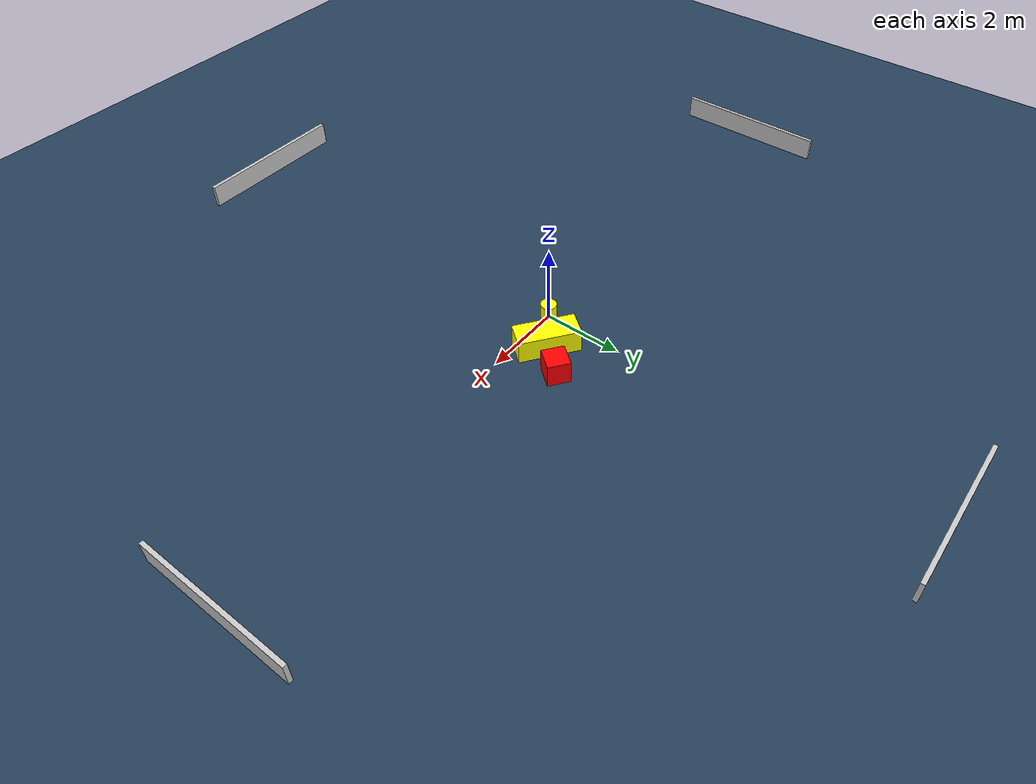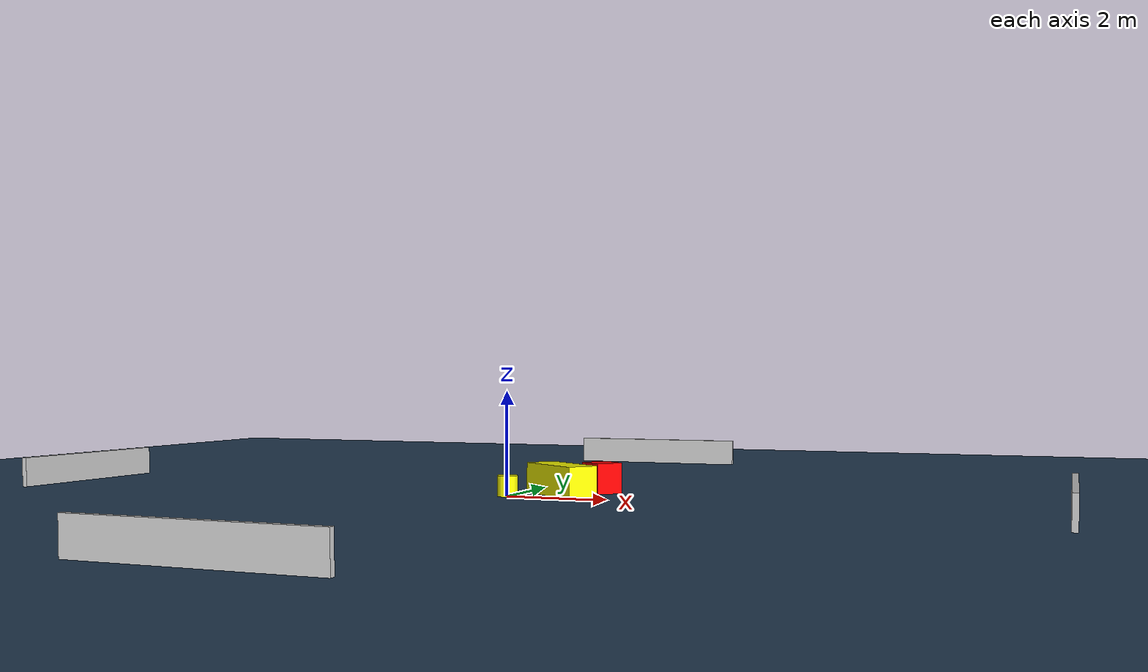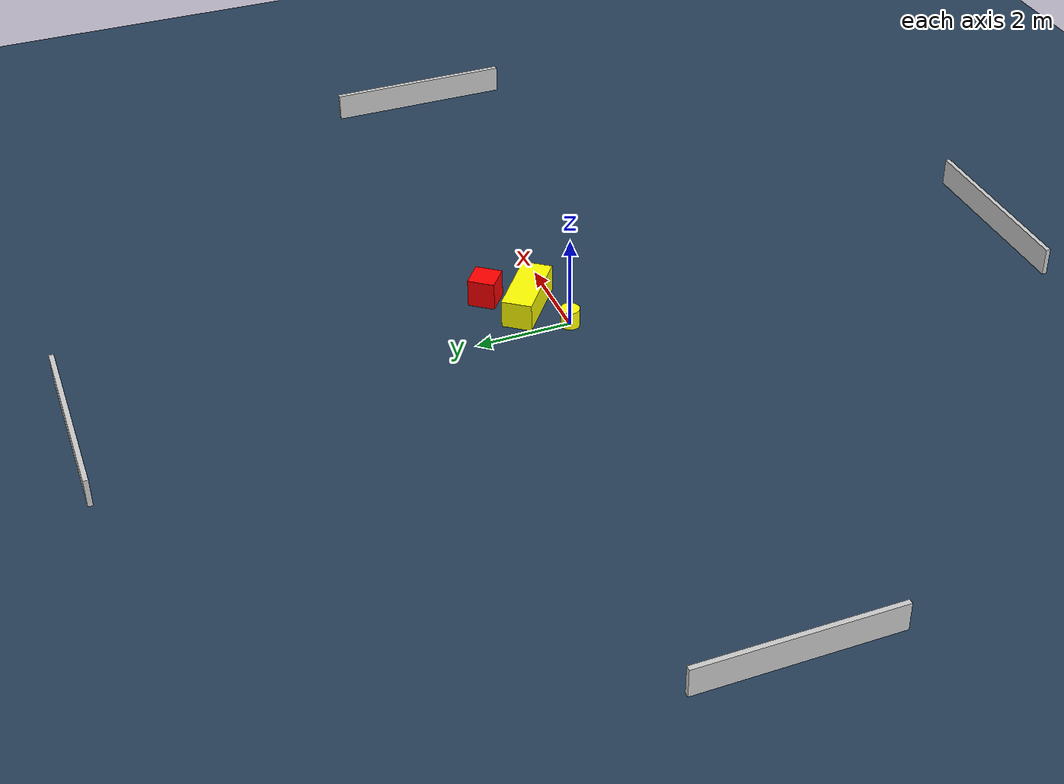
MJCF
<?xml version="1.0" ?>
<mujoco model="generated_environment">
  <option timestep="0.01" integrator="RK4" cone="elliptic"/>
  <default>
    <geom density="1"/>
  </default>
  <asset>
    <texture builtin="gradient" height="3072" name="skybox" rgb1="0.3 0.5 0.7" rgb2="0 0 0" type="skybox" width="512"/>
    <texture builtin="checker" height="300" name="groundplane" rgb1="0.2 0.3 0.4" rgb2="0.1 0.2 0.3" type="2d" width="300"/>
    <material name="groundplane" reflectance="0.2" texrepeat="5 5" texture="groundplane"/>
  </asset>
  <worldbody>
    <light dir="0 0 -1" directional="true" pos="0 0 1.5"/>
    <geom condim="3" friction="0.5 0.005 0.001" material="groundplane" name="floor" pos="0 0 0" size="0 0 0.05" type="plane"/>
    <body name="walls">
      <geom name="wall_1" condim="4" pos="-10.0 0.0 0.3" rgba="0.800000011920929 0.800000011920929 0.800000011920929 1.0" size="0.05 2.0 0.3" type="box"/>
      <geom name="wall_2" condim="4" pos="10.0 0.0 0.3" rgba="0.800000011920929 0.800000011920929 0.800000011920929 1.0" size="0.05 2.0 0.3" type="box"/>
      <geom name="wall_3" condim="4" pos="0.0 -10.0 0.3" rgba="0.800000011920929 0.800000011920929 0.800000011920929 1.0" size="2.0 0.05 0.3" type="box"/>
      <geom name="wall_4" condim="4" pos="0.0 10.0 0.3" rgba="0.800000011920929 0.800000011920929 0.800000011920929 1.0" size="2.0 0.05 0.3" type="box"/>
    </body>
    <body name="robot">
      <joint name="joint_x" type="slide" pos="0 0 0" axis="1 0 0"/>
      <joint name="joint_y" type="slide" pos="0 0 0" axis="0 1 0"/>
      <geom name="robot" type="cylinder" pos="0.0 0.0 0.2" size="0.2 0.2 0.0" mass="5.0" friction="1.0 0.005 0.0001" condim="4" rgba="1.0 1.0 0.0 1.0"/>
    </body>
    <body name="obstacle_1_movable">
      <geom name="obstacle_1_movable" condim="4" pos="0.8728524734824569 0.6023008424486608 0.3" euler="0 0 232.99024581030434" friction="0.0 0.005 0.001" rgba="1.0 1.0 0.0 1.0" size="0.3164688995436118 0.7611408697880035 0.3" type="box" mass="0.1"/>
      <joint type="free"/>
    </body>
    <body name="obstacle_2_static">
      <geom name="obstacle_2_static" condim="4" pos="1.4573663803 1.308661577097332 0.3" euler="0 0 232.48634288793033" friction="0.0 0.005 0.001" rgba="1.0 0.0 0.0 1.0" size="0.28448624673127476 0.2779463451721035 0.3" type="box"/>
    </body>
  </worldbody>
  <actuator>
    <motor name="actuator_x" joint="joint_x" gear="1" ctrlrange="-1 1"/>
    <motor name="actuator_y" joint="joint_y" gear="1" ctrlrange="-1 1"/>
  </actuator>
</mujoco>
